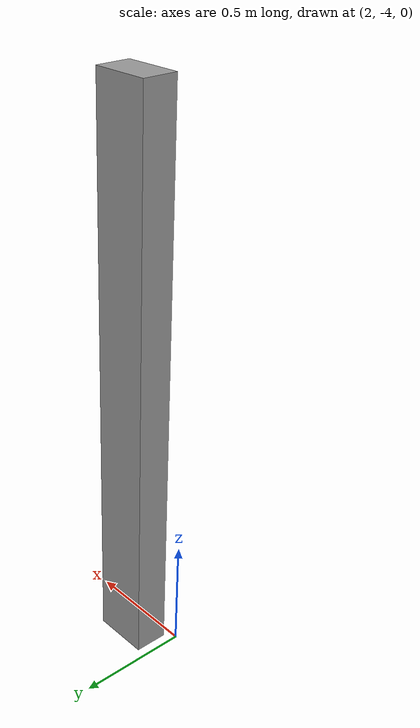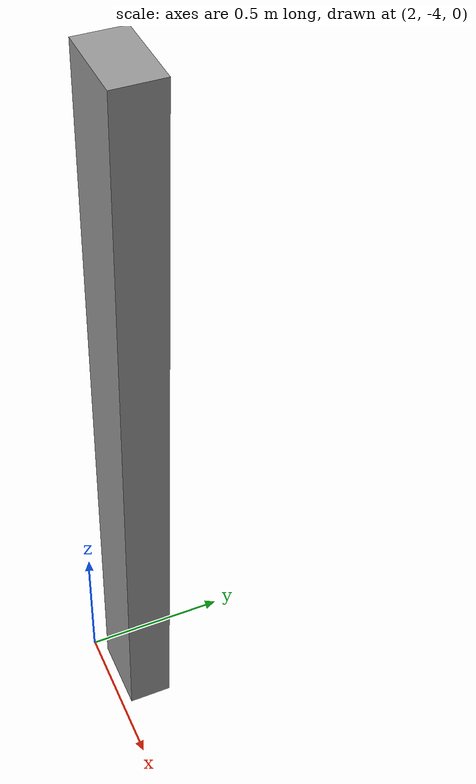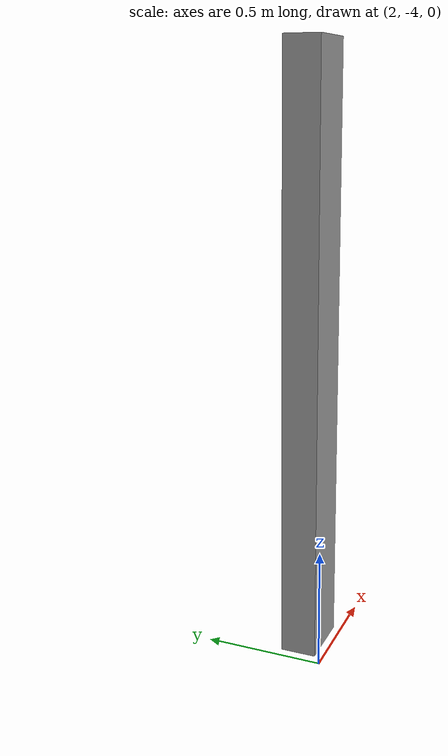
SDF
<?xml version='1.0'?>
<sdf version='1.7'>
  <model name='Untitled'>
    <pose>1.1475 -1.9825 0 0 -0 0</pose>
    <link name='Wall_0'>
      <collision name='Wall_0_Collision'>
        <geometry>
          <box>
            <size>0.25 0.15 2.5</size>
          </box>
        </geometry>
        <pose>0 0 1.25 0 -0 0</pose>
      </collision>
      <visual name='Wall_0_Visual'>
        <pose>0 0 1.25 0 -0 0</pose>
        <geometry>
          <box>
            <size>0.25 0.15 2.5</size>
          </box>
        </geometry>
        <material>
          <script>
            <uri>file://media/materials/scripts/gazebo.material</uri>
            <name>Gazebo/Grey</name>
          </script>
          <ambient>1 1 1 1</ambient>
        </material>
        <meta>
          <layer>0</layer>
        </meta>
      </visual>
      <pose>1.0225 -1.9075 0 0 -0 0</pose>
    </link>
    <static>1</static>
  </model>
</sdf>
